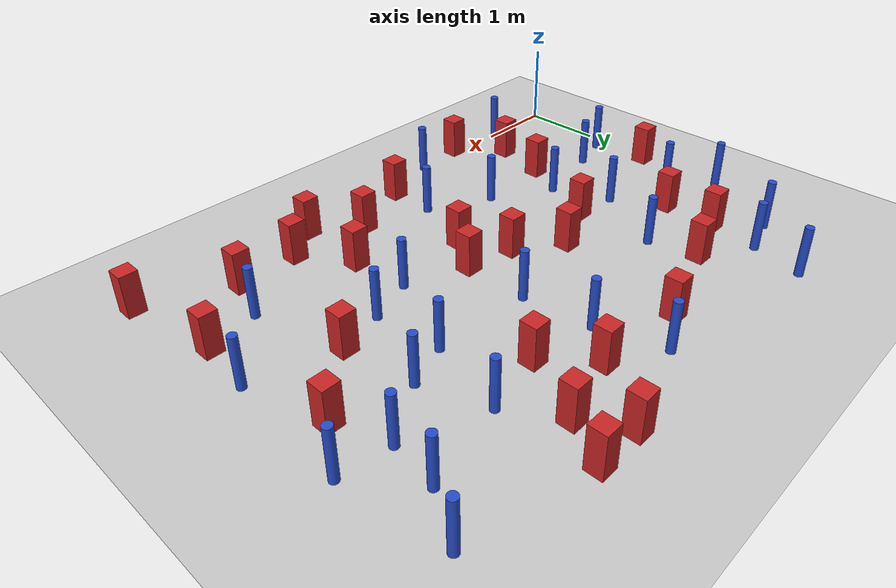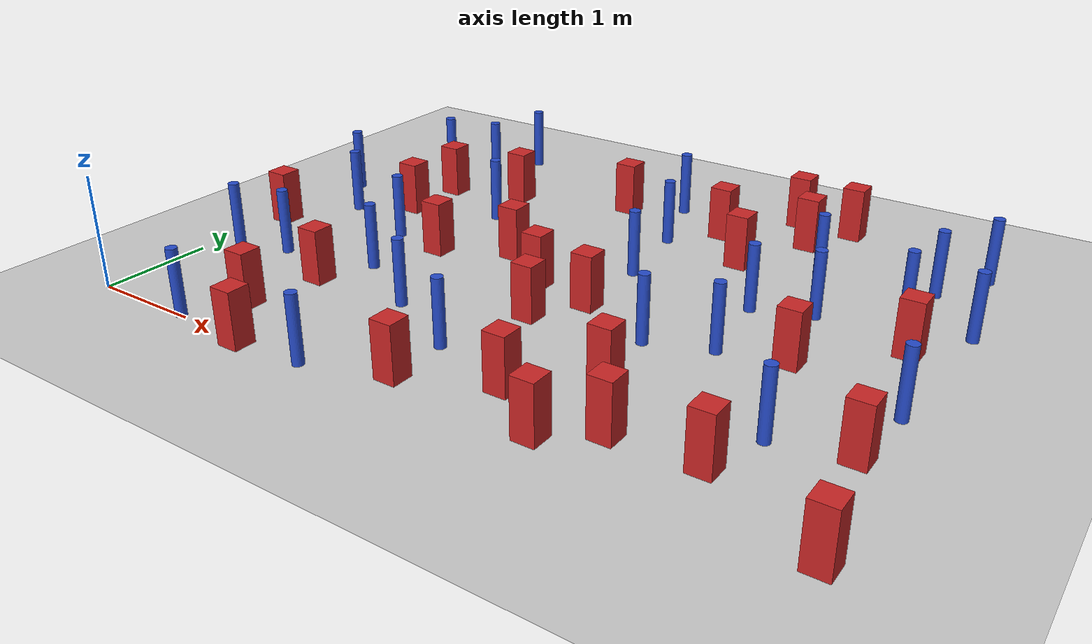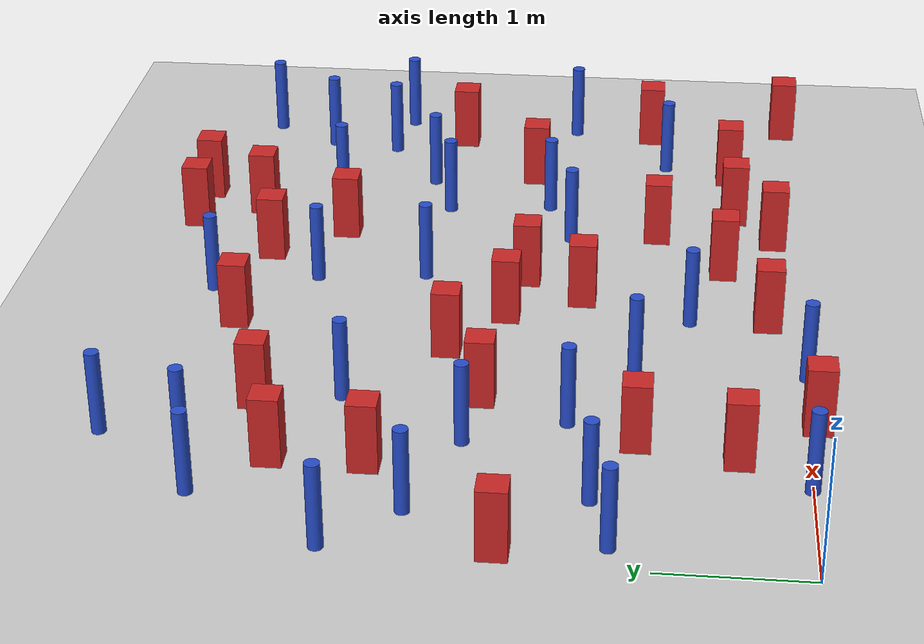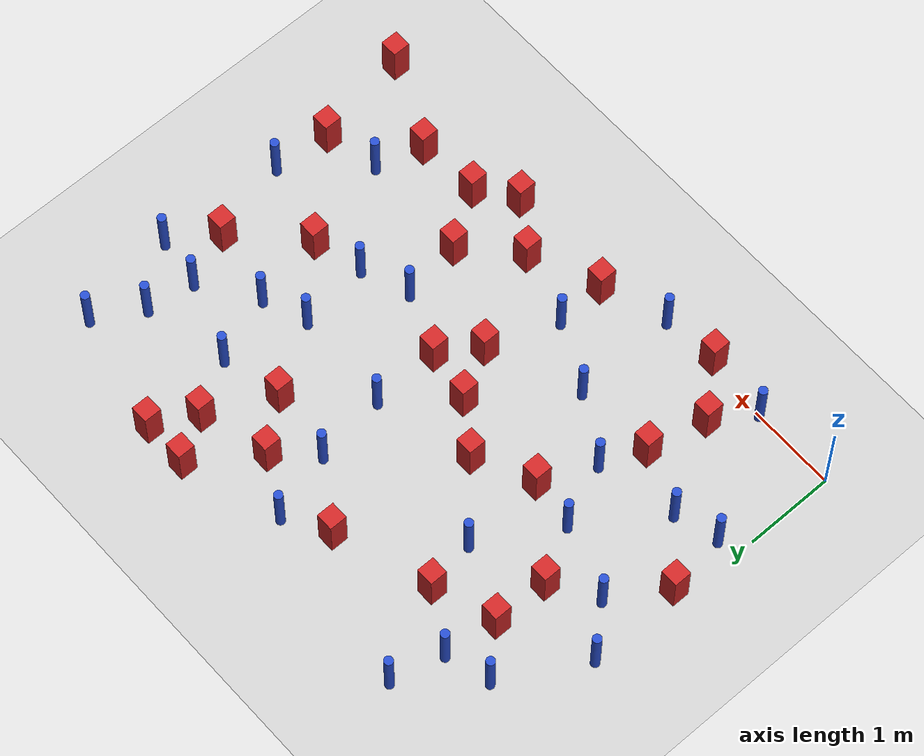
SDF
<sdf version="1.6">
 <world name="default">
  <model name="ground_plane">
   <static>1</static>
   <link name="link">
    <collision name="collision">
     <geometry><plane><normal>0 0 1</normal><size>100 100</size></plane></geometry>
     <surface><friction><ode><mu>100</mu><mu2>50</mu2></ode></friction></surface>
    </collision>
    <visual name="visual">
     <cast_shadows>0</cast_shadows>
     <geometry><plane><normal>0 0 1</normal><size>100 100</size></plane></geometry>
     <material>
      <ambient>1.0 1.0 1.0 1.0</ambient>
      <diffuse>0.8 0.8 0.8 1.0</diffuse>
      <specular>0.01 0.01 0.01 1.000000</specular>
     </material>
    </visual>
   </link>
  </model>
  <model name="square_post_obstacle1">
   <static>true</static>
   <pose>3.79219222096 0.554203007077 -6.11067671241e-07 -5.50515727128e-06 -8.79689657224e-07 2.37013304536e-05</pose>
   <link name="link">
    <pose>0 0 0.25 0 -0 0</pose>
    <inertial>
     <mass>100</mass>
     <inertia>
      <ixx>0.166667</ixx>
      <ixy>0</ixy>
      <ixz>0</ixz>
      <iyy>0.166667</iyy>
      <iyz>0</iyz>
      <izz>0.166667</izz>
     </inertia>
    </inertial>
    <collision name="collision"><geometry><box><size>.2 .2 .5</size></box></geometry></collision>
    <visual name="visual">
     <geometry><box><size>.2 .2 .5</size></box></geometry>
     <material>
      <script><name>Gazebo/Red</name><uri>file://media/materials/scripts/gazebo.material</uri></script>
     </material>
    </visual>
   </link>
  </model>
  <model name="pole_obstacle4">
   <static>true</static>
   <pose>4.79706785582 1.914005729 -9.47619616065e-06 5.49618799738e-07 2.36310414071e-07 -1.55090534796e-07</pose>
   <link name="link">
    <pose>0 0 0.3 0 -0 0</pose>
    <inertial>
     <mass>1</mass>
     <inertia><ixx>0.145833</ixx><ixy>0</ixy><ixz>0</ixz><iyy>0.145833</iyy><iyz>0</iyz><izz>0.125</izz></inertia>
    </inertial>
    <collision name="collision">
     <geometry><cylinder><radius>0.05</radius><length>.6</length></cylinder></geometry>
    </collision>
    <visual name="visual">
     <geometry><cylinder><radius>0.05</radius><length>.6</length></cylinder></geometry>
     <material>
      <script><name>Gazebo/Blue</name><uri>file://media/materials/scripts/gazebo.material</uri></script>
     </material>
    </visual>
   </link>
  </model>
  <model name="square_post_obstacle4">
   <static>true</static>
   <pose>4.3136634986 0.171121592858 -6.11067671241e-07 -5.50515727128e-06 -8.79689657224e-07 2.37013304536e-05</pose>
   <link name="link">
    <pose>0 0 0.25 0 -0 0</pose>
    <inertial>
     <mass>100</mass>
     <inertia>
      <ixx>0.166667</ixx>
      <ixy>0</ixy>
      <ixz>0</ixz>
      <iyy>0.166667</iyy>
      <iyz>0</iyz>
      <izz>0.166667</izz>
     </inertia>
    </inertial>
    <collision name="collision"><geometry><box><size>.2 .2 .5</size></box></geometry></collision>
    <visual name="visual">
     <geometry><box><size>.2 .2 .5</size></box></geometry>
     <material>
      <script><name>Gazebo/Red</name><uri>file://media/materials/scripts/gazebo.material</uri></script>
     </material>
    </visual>
   </link>
  </model>
  <model name="pole_obstacle11">
   <static>true</static>
   <pose>5.88051444099 3.81446614888 -9.47619616065e-06 5.49618799738e-07 2.36310414051e-07 -1.55090534805e-07</pose>
   <link name="link">
    <pose>0 0 0.3 0 -0 0</pose>
    <inertial>
     <mass>1</mass>
     <inertia><ixx>0.145833</ixx><ixy>0</ixy><ixz>0</ixz><iyy>0.145833</iyy><iyz>0</iyz><izz>0.125</izz></inertia>
    </inertial>
    <collision name="collision">
     <geometry><cylinder><radius>0.05</radius><length>.6</length></cylinder></geometry>
    </collision>
    <visual name="visual">
     <geometry><cylinder><radius>0.05</radius><length>.6</length></cylinder></geometry>
     <material>
      <script><name>Gazebo/Blue</name><uri>file://media/materials/scripts/gazebo.material</uri></script>
     </material>
    </visual>
   </link>
  </model>
  <model name="square_post_obstacle16">
   <static>true</static>
   <pose>4.32348105466 4.64907047005 -6.11067671241e-07 -5.50515727128e-06 -8.79689657224e-07 2.37013304536e-05</pose>
   <link name="link">
    <pose>0 0 0.25 0 -0 0</pose>
    <inertial>
     <mass>100</mass>
     <inertia>
      <ixx>0.166667</ixx>
      <ixy>0</ixy>
      <ixz>0</ixz>
      <iyy>0.166667</iyy>
      <iyz>0</iyz>
      <izz>0.166667</izz>
     </inertia>
    </inertial>
    <collision name="collision"><geometry><box><size>.2 .2 .5</size></box></geometry></collision>
    <visual name="visual">
     <geometry><box><size>.2 .2 .5</size></box></geometry>
     <material>
      <script><name>Gazebo/Red</name><uri>file://media/materials/scripts/gazebo.material</uri></script>
     </material>
    </visual>
   </link>
  </model>
  <model name="square_post_obstacle17">
   <static>true</static>
   <pose>0.998053957263 3.47318975611 -6.11067671241e-07 -5.50515727128e-06 -8.79689657224e-07 2.37013304536e-05</pose>
   <link name="link">
    <pose>0 0 0.25 0 -0 0</pose>
    <inertial>
     <mass>100</mass>
     <inertia>
      <ixx>0.166667</ixx>
      <ixy>0</ixy>
      <ixz>0</ixz>
      <iyy>0.166667</iyy>
      <iyz>0</iyz>
      <izz>0.166667</izz>
     </inertia>
    </inertial>
    <collision name="collision"><geometry><box><size>.2 .2 .5</size></box></geometry></collision>
    <visual name="visual">
     <geometry><box><size>.2 .2 .5</size></box></geometry>
     <material>
      <script><name>Gazebo/Red</name><uri>file://media/materials/scripts/gazebo.material</uri></script>
     </material>
    </visual>
   </link>
  </model>
  <model name="pole_obstacle22">
   <static>true</static>
   <pose>2.28810434807 1.1677232516 -9.47619616065e-06 5.49618799737e-07 2.36310414072e-07 -1.55090534793e-07</pose>
   <link name="link">
    <pose>0 0 0.3 0 -0 0</pose>
    <inertial>
     <mass>1</mass>
     <inertia><ixx>0.145833</ixx><ixy>0</ixy><ixz>0</ixz><iyy>0.145833</iyy><iyz>0</iyz><izz>0.125</izz></inertia>
    </inertial>
    <collision name="collision">
     <geometry><cylinder><radius>0.05</radius><length>.6</length></cylinder></geometry>
    </collision>
    <visual name="visual">
     <geometry><cylinder><radius>0.05</radius><length>.6</length></cylinder></geometry>
     <material>
      <script><name>Gazebo/Blue</name><uri>file://media/materials/scripts/gazebo.material</uri></script>
     </material>
    </visual>
   </link>
  </model>
  <model name="square_post_obstacle18">
   <static>true</static>
   <pose>1.68184939918 3.69530284069 -6.11067671241e-07 -5.50515727128e-06 -8.79689657224e-07 2.37013304536e-05</pose>
   <link name="link">
    <pose>0 0 0.25 0 -0 0</pose>
    <inertial>
     <mass>100</mass>
     <inertia>
      <ixx>0.166667</ixx>
      <ixy>0</ixy>
      <ixz>0</ixz>
      <iyy>0.166667</iyy>
      <iyz>0</iyz>
      <izz>0.166667</izz>
     </inertia>
    </inertial>
    <collision name="collision"><geometry><box><size>.2 .2 .5</size></box></geometry></collision>
    <visual name="visual">
     <geometry><box><size>.2 .2 .5</size></box></geometry>
     <material>
      <script><name>Gazebo/Red</name><uri>file://media/materials/scripts/gazebo.material</uri></script>
     </material>
    </visual>
   </link>
  </model>
  <model name="pole_obstacle28">
   <static>true</static>
   <pose>1.30821342656 2.26014021277 -9.47619616065e-06 5.49618799737e-07 2.36310414062e-07 -1.55090534798e-07</pose>
   <link name="link">
    <pose>0 0 0.3 0 -0 0</pose>
    <inertial>
     <mass>1</mass>
     <inertia><ixx>0.145833</ixx><ixy>0</ixy><ixz>0</ixz><iyy>0.145833</iyy><iyz>0</iyz><izz>0.125</izz></inertia>
    </inertial>
    <collision name="collision">
     <geometry><cylinder><radius>0.05</radius><length>.6</length></cylinder></geometry>
    </collision>
    <visual name="visual">
     <geometry><cylinder><radius>0.05</radius><length>.6</length></cylinder></geometry>
     <material>
      <script><name>Gazebo/Blue</name><uri>file://media/materials/scripts/gazebo.material</uri></script>
     </material>
    </visual>
   </link>
  </model>
  <model name="square_post_obstacle33">
   <static>true</static>
   <pose>0.984866948307 2.84915845615 -6.11067671241e-07 -5.50515727128e-06 -8.79689657224e-07 2.37013304536e-05</pose>
   <link name="link">
    <pose>0 0 0.25 0 -0 0</pose>
    <inertial>
     <mass>100</mass>
     <inertia>
      <ixx>0.166667</ixx>
      <ixy>0</ixy>
      <ixz>0</ixz>
      <iyy>0.166667</iyy>
      <iyz>0</iyz>
      <izz>0.166667</izz>
     </inertia>
    </inertial>
    <collision name="collision"><geometry><box><size>.2 .2 .5</size></box></geometry></collision>
    <visual name="visual">
     <geometry><box><size>.2 .2 .5</size></box></geometry>
     <material>
      <script><name>Gazebo/Red</name><uri>file://media/materials/scripts/gazebo.material</uri></script>
     </material>
    </visual>
   </link>
  </model>
  <model name="pole_obstacle43">
   <static>true</static>
   <pose>0.216055112586 1.26381261979 -9.47619616065e-06 5.49618799737e-07 2.36310414054e-07 -1.55090534804e-07</pose>
   <link name="link">
    <pose>0 0 0.3 0 -0 0</pose>
    <inertial>
     <mass>1</mass>
     <inertia><ixx>0.145833</ixx><ixy>0</ixy><ixz>0</ixz><iyy>0.145833</iyy><iyz>0</iyz><izz>0.125</izz></inertia>
    </inertial>
    <collision name="collision">
     <geometry><cylinder><radius>0.05</radius><length>.6</length></cylinder></geometry>
    </collision>
    <visual name="visual">
     <geometry><cylinder><radius>0.05</radius><length>.6</length></cylinder></geometry>
     <material>
      <script><name>Gazebo/Blue</name><uri>file://media/materials/scripts/gazebo.material</uri></script>
     </material>
    </visual>
   </link>
  </model>
  <model name="square_post_obstacle41">
   <static>true</static>
   <pose>3.57045151102 2.00614338119 -6.11067671241e-07 -5.50515727128e-06 -8.79689657224e-07 2.37013304536e-05</pose>
   <link name="link">
    <pose>0 0 0.25 0 -0 0</pose>
    <inertial>
     <mass>100</mass>
     <inertia>
      <ixx>0.166667</ixx>
      <ixy>0</ixy>
      <ixz>0</ixz>
      <iyy>0.166667</iyy>
      <iyz>0</iyz>
      <izz>0.166667</izz>
     </inertia>
    </inertial>
    <collision name="collision"><geometry><box><size>.2 .2 .5</size></box></geometry></collision>
    <visual name="visual">
     <geometry><box><size>.2 .2 .5</size></box></geometry>
     <material>
      <script><name>Gazebo/Red</name><uri>file://media/materials/scripts/gazebo.material</uri></script>
     </material>
    </visual>
   </link>
  </model>
  <model name="square_post_obstacle43">
   <static>true</static>
   <pose>3.82876449311 3.96652073575 -6.11067671241e-07 -5.50515727128e-06 -8.79689657224e-07 2.37013304536e-05</pose>
   <link name="link">
    <pose>0 0 0.25 0 -0 0</pose>
    <inertial>
     <mass>100</mass>
     <inertia>
      <ixx>0.166667</ixx>
      <ixy>0</ixy>
      <ixz>0</ixz>
      <iyy>0.166667</iyy>
      <iyz>0</iyz>
      <izz>0.166667</izz>
     </inertia>
    </inertial>
    <collision name="collision"><geometry><box><size>.2 .2 .5</size></box></geometry></collision>
    <visual name="visual">
     <geometry><box><size>.2 .2 .5</size></box></geometry>
     <material>
      <script><name>Gazebo/Red</name><uri>file://media/materials/scripts/gazebo.material</uri></script>
     </material>
    </visual>
   </link>
  </model>
  <model name="pole_obstacle56">
   <static>true</static>
   <pose>1.58944044289 1.58795678903 -9.47619616065e-06 5.49618799737e-07 2.36310414065e-07 -1.55090534798e-07</pose>
   <link name="link">
    <pose>0 0 0.3 0 -0 0</pose>
    <inertial>
     <mass>1</mass>
     <inertia><ixx>0.145833</ixx><ixy>0</ixy><ixz>0</ixz><iyy>0.145833</iyy><iyz>0</iyz><izz>0.125</izz></inertia>
    </inertial>
    <collision name="collision">
     <geometry><cylinder><radius>0.05</radius><length>.6</length></cylinder></geometry>
    </collision>
    <visual name="visual">
     <geometry><cylinder><radius>0.05</radius><length>.6</length></cylinder></geometry>
     <material>
      <script><name>Gazebo/Blue</name><uri>file://media/materials/scripts/gazebo.material</uri></script>
     </material>
    </visual>
   </link>
  </model>
  <model name="pole_obstacle65">
   <static>true</static>
   <pose>4.26177026128 1.72013369451 -9.47619616065e-06 5.49618799738e-07 2.36310414071e-07 -1.55090534796e-07</pose>
   <link name="link">
    <pose>0 0 0.3 0 -0 0</pose>
    <inertial>
     <mass>1</mass>
     <inertia><ixx>0.145833</ixx><ixy>0</ixy><ixz>0</ixz><iyy>0.145833</iyy><iyz>0</iyz><izz>0.125</izz></inertia>
    </inertial>
    <collision name="collision">
     <geometry><cylinder><radius>0.05</radius><length>.6</length></cylinder></geometry>
    </collision>
    <visual name="visual">
     <geometry><cylinder><radius>0.05</radius><length>.6</length></cylinder></geometry>
     <material>
      <script><name>Gazebo/Blue</name><uri>file://media/materials/scripts/gazebo.material</uri></script>
     </material>
    </visual>
   </link>
  </model>
  <model name="pole_obstacle71">
   <static>true</static>
   <pose>0.703647938996 1.39776191225 -9.47619616065e-06 5.49618799738e-07 2.36310414061e-07 -1.55090534801e-07</pose>
   <link name="link">
    <pose>0 0 0.3 0 -0 0</pose>
    <inertial>
     <mass>1</mass>
     <inertia><ixx>0.145833</ixx><ixy>0</ixy><ixz>0</ixz><iyy>0.145833</iyy><iyz>0</iyz><izz>0.125</izz></inertia>
    </inertial>
    <collision name="collision">
     <geometry><cylinder><radius>0.05</radius><length>.6</length></cylinder></geometry>
    </collision>
    <visual name="visual">
     <geometry><cylinder><radius>0.05</radius><length>.6</length></cylinder></geometry>
     <material>
      <script><name>Gazebo/Blue</name><uri>file://media/materials/scripts/gazebo.material</uri></script>
     </material>
    </visual>
   </link>
  </model>
  <model name="pole_obstacle74">
   <static>true</static>
   <pose>1.07920066664 4.06081301825 -9.47619616065e-06 5.49618799737e-07 2.36310414061e-07 -1.550905348e-07</pose>
   <link name="link">
    <pose>0 0 0.3 0 -0 0</pose>
    <inertial>
     <mass>1</mass>
     <inertia><ixx>0.145833</ixx><ixy>0</ixy><ixz>0</ixz><iyy>0.145833</iyy><iyz>0</iyz><izz>0.125</izz></inertia>
    </inertial>
    <collision name="collision">
     <geometry><cylinder><radius>0.05</radius><length>.6</length></cylinder></geometry>
    </collision>
    <visual name="visual">
     <geometry><cylinder><radius>0.05</radius><length>.6</length></cylinder></geometry>
     <material>
      <script><name>Gazebo/Blue</name><uri>file://media/materials/scripts/gazebo.material</uri></script>
     </material>
    </visual>
   </link>
  </model>
  <model name="square_post_obstacle74">
   <static>true</static>
   <pose>1.68644656364 -0.0543923644889 -6.11067671241e-07 -5.50515727128e-06 -8.79689657224e-07 2.37013304536e-05</pose>
   <link name="link">
    <pose>0 0 0.25 0 -0 0</pose>
    <inertial>
     <mass>100</mass>
     <inertia>
      <ixx>0.166667</ixx>
      <ixy>0</ixy>
      <ixz>0</ixz>
      <iyy>0.166667</iyy>
      <iyz>0</iyz>
      <izz>0.166667</izz>
     </inertia>
    </inertial>
    <collision name="collision"><geometry><box><size>.2 .2 .5</size></box></geometry></collision>
    <visual name="visual">
     <geometry><box><size>.2 .2 .5</size></box></geometry>
     <material>
      <script><name>Gazebo/Red</name><uri>file://media/materials/scripts/gazebo.material</uri></script>
     </material>
    </visual>
   </link>
  </model>
  <model name="pole_obstacle87">
   <static>true</static>
   <pose>3.01632452356 0.793861336705 -9.47619616065e-06 5.49618799738e-07 2.36310414075e-07 -1.55090534793e-07</pose>
   <link name="link">
    <pose>0 0 0.3 0 -0 0</pose>
    <inertial>
     <mass>1</mass>
     <inertia><ixx>0.145833</ixx><ixy>0</ixy><ixz>0</ixz><iyy>0.145833</iyy><iyz>0</iyz><izz>0.125</izz></inertia>
    </inertial>
    <collision name="collision">
     <geometry><cylinder><radius>0.05</radius><length>.6</length></cylinder></geometry>
    </collision>
    <visual name="visual">
     <geometry><cylinder><radius>0.05</radius><length>.6</length></cylinder></geometry>
     <material>
      <script><name>Gazebo/Blue</name><uri>file://media/materials/scripts/gazebo.material</uri></script>
     </material>
    </visual>
   </link>
  </model>
  <model name="square_post_obstacle80">
   <static>true</static>
   <pose>0.116263595796 1.94881668648 -6.11067671241e-07 -5.50515727128e-06 -8.79689657224e-07 2.37013304536e-05</pose>
   <link name="link">
    <pose>0 0 0.25 0 -0 0</pose>
    <inertial>
     <mass>100</mass>
     <inertia>
      <ixx>0.166667</ixx>
      <ixy>0</ixy>
      <ixz>0</ixz>
      <iyy>0.166667</iyy>
      <iyz>0</iyz>
      <izz>0.166667</izz>
     </inertia>
    </inertial>
    <collision name="collision"><geometry><box><size>.2 .2 .5</size></box></geometry></collision>
    <visual name="visual">
     <geometry><box><size>.2 .2 .5</size></box></geometry>
     <material>
      <script><name>Gazebo/Red</name><uri>file://media/materials/scripts/gazebo.material</uri></script>
     </material>
    </visual>
   </link>
  </model>
  <model name="square_post_obstacle83">
   <static>true</static>
   <pose>2.99994828909 2.11521698341 -6.11067671241e-07 -5.50515727128e-06 -8.79689657224e-07 2.37013304536e-05</pose>
   <link name="link">
    <pose>0 0 0.25 0 -0 0</pose>
    <inertial>
     <mass>100</mass>
     <inertia>
      <ixx>0.166667</ixx>
      <ixy>0</ixy>
      <ixz>0</ixz>
      <iyy>0.166667</iyy>
      <iyz>0</iyz>
      <izz>0.166667</izz>
     </inertia>
    </inertial>
    <collision name="collision"><geometry><box><size>.2 .2 .5</size></box></geometry></collision>
    <visual name="visual">
     <geometry><box><size>.2 .2 .5</size></box></geometry>
     <material>
      <script><name>Gazebo/Red</name><uri>file://media/materials/scripts/gazebo.material</uri></script>
     </material>
    </visual>
   </link>
  </model>
  <model name="square_post_obstacle84">
   <static>true</static>
   <pose>5.33080977806 2.06206287119 -6.11067671241e-07 -5.50515727128e-06 -8.79689657224e-07 2.37013304536e-05</pose>
   <link name="link">
    <pose>0 0 0.25 0 -0 0</pose>
    <inertial>
     <mass>100</mass>
     <inertia>
      <ixx>0.166667</ixx>
      <ixy>0</ixy>
      <ixz>0</ixz>
      <iyy>0.166667</iyy>
      <iyz>0</iyz>
      <izz>0.166667</izz>
     </inertia>
    </inertial>
    <collision name="collision"><geometry><box><size>.2 .2 .5</size></box></geometry></collision>
    <visual name="visual">
     <geometry><box><size>.2 .2 .5</size></box></geometry>
     <material>
      <script><name>Gazebo/Red</name><uri>file://media/materials/scripts/gazebo.material</uri></script>
     </material>
    </visual>
   </link>
  </model>
  <model name="pole_obstacle92">
   <static>true</static>
   <pose>5.61044557585 1.0077013824 -9.47619616065e-06 5.49618799737e-07 2.36310414071e-07 -1.55090534795e-07</pose>
   <link name="link">
    <pose>0 0 0.3 0 -0 0</pose>
    <inertial>
     <mass>1</mass>
     <inertia><ixx>0.145833</ixx><ixy>0</ixy><ixz>0</ixz><iyy>0.145833</iyy><iyz>0</iyz><izz>0.125</izz></inertia>
    </inertial>
    <collision name="collision">
     <geometry><cylinder><radius>0.05</radius><length>.6</length></cylinder></geometry>
    </collision>
    <visual name="visual">
     <geometry><cylinder><radius>0.05</radius><length>.6</length></cylinder></geometry>
     <material>
      <script><name>Gazebo/Blue</name><uri>file://media/materials/scripts/gazebo.material</uri></script>
     </material>
    </visual>
   </link>
  </model>
  <model name="square_post_obstacle95">
   <static>true</static>
   <pose>3.28506233248 1.57991079326 -6.11067671241e-07 -5.50515727128e-06 -8.79689657224e-07 2.37013304536e-05</pose>
   <link name="link">
    <pose>0 0 0.25 0 -0 0</pose>
    <inertial>
     <mass>100</mass>
     <inertia>
      <ixx>0.166667</ixx>
      <ixy>0</ixy>
      <ixz>0</ixz>
      <iyy>0.166667</iyy>
      <iyz>0</iyz>
      <izz>0.166667</izz>
     </inertia>
    </inertial>
    <collision name="collision"><geometry><box><size>.2 .2 .5</size></box></geometry></collision>
    <visual name="visual">
     <geometry><box><size>.2 .2 .5</size></box></geometry>
     <material>
      <script><name>Gazebo/Red</name><uri>file://media/materials/scripts/gazebo.material</uri></script>
     </material>
    </visual>
   </link>
  </model>
  <model name="square_post_obstacle96">
   <static>true</static>
   <pose>4.72031970234 0.464931102182 -6.11067671241e-07 -5.50515727128e-06 -8.79689657224e-07 2.37013304536e-05</pose>
   <link name="link">
    <pose>0 0 0.25 0 -0 0</pose>
    <inertial>
     <mass>100</mass>
     <inertia>
      <ixx>0.166667</ixx>
      <ixy>0</ixy>
      <ixz>0</ixz>
      <iyy>0.166667</iyy>
      <iyz>0</iyz>
      <izz>0.166667</izz>
     </inertia>
    </inertial>
    <collision name="collision"><geometry><box><size>.2 .2 .5</size></box></geometry></collision>
    <visual name="visual">
     <geometry><box><size>.2 .2 .5</size></box></geometry>
     <material>
      <script><name>Gazebo/Red</name><uri>file://media/materials/scripts/gazebo.material</uri></script>
     </material>
    </visual>
   </link>
  </model>
  <model name="pole_obstacle111">
   <static>true</static>
   <pose>6.18319131883 4.32823075727 -9.47619616065e-06 5.49618799737e-07 2.36310414037e-07 -1.55090534814e-07</pose>
   <link name="link">
    <pose>0 0 0.3 0 -0 0</pose>
    <inertial>
     <mass>1</mass>
     <inertia><ixx>0.145833</ixx><ixy>0</ixy><ixz>0</ixz><iyy>0.145833</iyy><iyz>0</iyz><izz>0.125</izz></inertia>
    </inertial>
    <collision name="collision">
     <geometry><cylinder><radius>0.05</radius><length>.6</length></cylinder></geometry>
    </collision>
    <visual name="visual">
     <geometry><cylinder><radius>0.05</radius><length>.6</length></cylinder></geometry>
     <material>
      <script><name>Gazebo/Blue</name><uri>file://media/materials/scripts/gazebo.material</uri></script>
     </material>
    </visual>
   </link>
  </model>
  <model name="square_post_obstacle110">
   <static>true</static>
   <pose>6.39923466736 0.0416942447685 -6.11067671241e-07 -5.50515727128e-06 -8.79689657224e-07 2.37013304536e-05</pose>
   <link name="link">
    <pose>0 0 0.25 0 -0 0</pose>
    <inertial>
     <mass>100</mass>
     <inertia>
      <ixx>0.166667</ixx>
      <ixy>0</ixy>
      <ixz>0</ixz>
      <iyy>0.166667</iyy>
      <iyz>0</iyz>
      <izz>0.166667</izz>
     </inertia>
    </inertial>
    <collision name="collision"><geometry><box><size>.2 .2 .5</size></box></geometry></collision>
    <visual name="visual">
     <geometry><box><size>.2 .2 .5</size></box></geometry>
     <material>
      <script><name>Gazebo/Red</name><uri>file://media/materials/scripts/gazebo.material</uri></script>
     </material>
    </visual>
   </link>
  </model>
  <model name="square_post_obstacle112">
   <static>true</static>
   <pose>1.83884051942 2.18930431593 -6.11067671241e-07 -5.50515727128e-06 -8.79689657224e-07 2.37013304536e-05</pose>
   <link name="link">
    <pose>0 0 0.25 0 -0 0</pose>
    <inertial>
     <mass>100</mass>
     <inertia>
      <ixx>0.166667</ixx>
      <ixy>0</ixy>
      <ixz>0</ixz>
      <iyy>0.166667</iyy>
      <iyz>0</iyz>
      <izz>0.166667</izz>
     </inertia>
    </inertial>
    <collision name="collision"><geometry><box><size>.2 .2 .5</size></box></geometry></collision>
    <visual name="visual">
     <geometry><box><size>.2 .2 .5</size></box></geometry>
     <material>
      <script><name>Gazebo/Red</name><uri>file://media/materials/scripts/gazebo.material</uri></script>
     </material>
    </visual>
   </link>
  </model>
  <model name="pole_obstacle121">
   <static>true</static>
   <pose>4.93414253019 3.60222079316 -9.47619616065e-06 5.49618799738e-07 2.36310414051e-07 -1.55090534805e-07</pose>
   <link name="link">
    <pose>0 0 0.3 0 -0 0</pose>
    <inertial>
     <mass>1</mass>
     <inertia><ixx>0.145833</ixx><ixy>0</ixy><ixz>0</ixz><iyy>0.145833</iyy><iyz>0</iyz><izz>0.125</izz></inertia>
    </inertial>
    <collision name="collision">
     <geometry><cylinder><radius>0.05</radius><length>.6</length></cylinder></geometry>
    </collision>
    <visual name="visual">
     <geometry><cylinder><radius>0.05</radius><length>.6</length></cylinder></geometry>
     <material>
      <script><name>Gazebo/Blue</name><uri>file://media/materials/scripts/gazebo.material</uri></script>
     </material>
    </visual>
   </link>
  </model>
  <model name="square_post_obstacle132">
   <static>true</static>
   <pose>2.76003079809 4.03835283163 -6.11067671241e-07 -5.50515727128e-06 -8.79689657224e-07 2.37013304536e-05</pose>
   <link name="link">
    <pose>0 0 0.25 0 -0 0</pose>
    <inertial>
     <mass>100</mass>
     <inertia>
      <ixx>0.166667</ixx>
      <ixy>0</ixy>
      <ixz>0</ixz>
      <iyy>0.166667</iyy>
      <iyz>0</iyz>
      <izz>0.166667</izz>
     </inertia>
    </inertial>
    <collision name="collision"><geometry><box><size>.2 .2 .5</size></box></geometry></collision>
    <visual name="visual">
     <geometry><box><size>.2 .2 .5</size></box></geometry>
     <material>
      <script><name>Gazebo/Red</name><uri>file://media/materials/scripts/gazebo.material</uri></script>
     </material>
    </visual>
   </link>
  </model>
  <model name="pole_obstacle138">
   <static>true</static>
   <pose>5.80370434113 3.27703155267 -9.47619616065e-06 5.49618799738e-07 2.36310414051e-07 -1.55090534805e-07</pose>
   <link name="link">
    <pose>0 0 0.3 0 -0 0</pose>
    <inertial>
     <mass>1</mass>
     <inertia><ixx>0.145833</ixx><ixy>0</ixy><ixz>0</ixz><iyy>0.145833</iyy><iyz>0</iyz><izz>0.125</izz></inertia>
    </inertial>
    <collision name="collision">
     <geometry><cylinder><radius>0.05</radius><length>.6</length></cylinder></geometry>
    </collision>
    <visual name="visual">
     <geometry><cylinder><radius>0.05</radius><length>.6</length></cylinder></geometry>
     <material>
      <script><name>Gazebo/Blue</name><uri>file://media/materials/scripts/gazebo.material</uri></script>
     </material>
    </visual>
   </link>
  </model>
  <model name="square_post_obstacle136">
   <static>true</static>
   <pose>4.34325883678 1.05761910405 -6.11067671241e-07 -5.50515727128e-06 -8.79689657224e-07 2.37013304536e-05</pose>
   <link name="link">
    <pose>0 0 0.25 0 -0 0</pose>
    <inertial>
     <mass>100</mass>
     <inertia>
      <ixx>0.166667</ixx>
      <ixy>0</ixy>
      <ixz>0</ixz>
      <iyy>0.166667</iyy>
      <iyz>0</iyz>
      <izz>0.166667</izz>
     </inertia>
    </inertial>
    <collision name="collision"><geometry><box><size>.2 .2 .5</size></box></geometry></collision>
    <visual name="visual">
     <geometry><box><size>.2 .2 .5</size></box></geometry>
     <material>
      <script><name>Gazebo/Red</name><uri>file://media/materials/scripts/gazebo.material</uri></script>
     </material>
    </visual>
   </link>
  </model>
  <model name="pole_obstacle141">
   <static>true</static>
   <pose>5.19705463333 2.87762112749 -9.47619616065e-06 5.49618799738e-07 2.36310414051e-07 -1.55090534805e-07</pose>
   <link name="link">
    <pose>0 0 0.3 0 -0 0</pose>
    <inertial>
     <mass>1</mass>
     <inertia><ixx>0.145833</ixx><ixy>0</ixy><ixz>0</ixz><iyy>0.145833</iyy><iyz>0</iyz><izz>0.125</izz></inertia>
    </inertial>
    <collision name="collision">
     <geometry><cylinder><radius>0.05</radius><length>.6</length></cylinder></geometry>
    </collision>
    <visual name="visual">
     <geometry><cylinder><radius>0.05</radius><length>.6</length></cylinder></geometry>
     <material>
      <script><name>Gazebo/Blue</name><uri>file://media/materials/scripts/gazebo.material</uri></script>
     </material>
    </visual>
   </link>
  </model>
  <model name="pole_obstacle142">
   <static>true</static>
   <pose>4.70690044753 2.70098586891 -9.47619616065e-06 5.49618799738e-07 2.36310414051e-07 -1.55090534805e-07</pose>
   <link name="link">
    <pose>0 0 0.3 0 -0 0</pose>
    <inertial>
     <mass>1</mass>
     <inertia><ixx>0.145833</ixx><ixy>0</ixy><ixz>0</ixz><iyy>0.145833</iyy><iyz>0</iyz><izz>0.125</izz></inertia>
    </inertial>
    <collision name="collision">
     <geometry><cylinder><radius>0.05</radius><length>.6</length></cylinder></geometry>
    </collision>
    <visual name="visual">
     <geometry><cylinder><radius>0.05</radius><length>.6</length></cylinder></geometry>
     <material>
      <script><name>Gazebo/Blue</name><uri>file://media/materials/scripts/gazebo.material</uri></script>
     </material>
    </visual>
   </link>
  </model>
  <model name="pole_obstacle145">
   <static>true</static>
   <pose>6.36103174136 3.19468120557 -9.47619616065e-06 5.49618799738e-07 2.36310414051e-07 -1.55090534805e-07</pose>
   <link name="link">
    <pose>0 0 0.3 0 -0 0</pose>
    <inertial>
     <mass>1</mass>
     <inertia><ixx>0.145833</ixx><ixy>0</ixy><ixz>0</ixz><iyy>0.145833</iyy><iyz>0</iyz><izz>0.125</izz></inertia>
    </inertial>
    <collision name="collision">
     <geometry><cylinder><radius>0.05</radius><length>.6</length></cylinder></geometry>
    </collision>
    <visual name="visual">
     <geometry><cylinder><radius>0.05</radius><length>.6</length></cylinder></geometry>
     <material>
      <script><name>Gazebo/Blue</name><uri>file://media/materials/scripts/gazebo.material</uri></script>
     </material>
    </visual>
   </link>
  </model>
  <model name="square_post_obstacle142">
   <static>true</static>
   <pose>1.37636616325 1.13193920639 -6.11067671241e-07 -5.50515727128e-06 -8.79689657224e-07 2.37013304536e-05</pose>
   <link name="link">
    <pose>0 0 0.25 0 -0 0</pose>
    <inertial>
     <mass>100</mass>
     <inertia>
      <ixx>0.166667</ixx>
      <ixy>0</ixy>
      <ixz>0</ixz>
      <iyy>0.166667</iyy>
      <iyz>0</iyz>
      <izz>0.166667</izz>
     </inertia>
    </inertial>
    <collision name="collision"><geometry><box><size>.2 .2 .5</size></box></geometry></collision>
    <visual name="visual">
     <geometry><box><size>.2 .2 .5</size></box></geometry>
     <material>
      <script><name>Gazebo/Red</name><uri>file://media/materials/scripts/gazebo.material</uri></script>
     </material>
    </visual>
   </link>
  </model>
  <model name="square_post_obstacle145">
   <static>true</static>
   <pose>2.47724302857 2.48757557991 -6.11067671241e-07 -5.50515727128e-06 -8.79689657224e-07 2.37013304536e-05</pose>
   <link name="link">
    <pose>0 0 0.25 0 -0 0</pose>
    <inertial>
     <mass>100</mass>
     <inertia>
      <ixx>0.166667</ixx>
      <ixy>0</ixy>
      <ixz>0</ixz>
      <iyy>0.166667</iyy>
      <iyz>0</iyz>
      <izz>0.166667</izz>
     </inertia>
    </inertial>
    <collision name="collision"><geometry><box><size>.2 .2 .5</size></box></geometry></collision>
    <visual name="visual">
     <geometry><box><size>.2 .2 .5</size></box></geometry>
     <material>
      <script><name>Gazebo/Red</name><uri>file://media/materials/scripts/gazebo.material</uri></script>
     </material>
    </visual>
   </link>
  </model>
  <model name="pole_obstacle157">
   <static>true</static>
   <pose>3.4647939287 3.56054024077 -9.47619616065e-06 5.49618799737e-07 2.36310414051e-07 -1.55090534807e-07</pose>
   <link name="link">
    <pose>0 0 0.3 0 -0 0</pose>
    <inertial>
     <mass>1</mass>
     <inertia><ixx>0.145833</ixx><ixy>0</ixy><ixz>0</ixz><iyy>0.145833</iyy><iyz>0</iyz><izz>0.125</izz></inertia>
    </inertial>
    <collision name="collision">
     <geometry><cylinder><radius>0.05</radius><length>.6</length></cylinder></geometry>
    </collision>
    <visual name="visual">
     <geometry><cylinder><radius>0.05</radius><length>.6</length></cylinder></geometry>
     <material>
      <script><name>Gazebo/Blue</name><uri>file://media/materials/scripts/gazebo.material</uri></script>
     </material>
    </visual>
   </link>
  </model>
  <model name="square_post_obstacle161">
   <static>true</static>
   <pose>6.02098922749 2.70144807098 -6.11067671241e-07 -5.50515727128e-06 -8.79689657224e-07 2.37013304536e-05</pose>
   <link name="link">
    <pose>0 0 0.25 0 -0 0</pose>
    <inertial>
     <mass>100</mass>
     <inertia>
      <ixx>0.166667</ixx>
      <ixy>0</ixy>
      <ixz>0</ixz>
      <iyy>0.166667</iyy>
      <iyz>0</iyz>
      <izz>0.166667</izz>
     </inertia>
    </inertial>
    <collision name="collision"><geometry><box><size>.2 .2 .5</size></box></geometry></collision>
    <visual name="visual">
     <geometry><box><size>.2 .2 .5</size></box></geometry>
     <material>
      <script><name>Gazebo/Red</name><uri>file://media/materials/scripts/gazebo.material</uri></script>
     </material>
    </visual>
   </link>
  </model>
  <model name="pole_obstacle179">
   <static>true</static>
   <pose>0.944238163048 0.0106927344317 -9.47619616065e-06 5.49618799738e-07 2.36310414062e-07 -1.55090534799e-07</pose>
   <link name="link">
    <pose>0 0 0.3 0 -0 0</pose>
    <inertial>
     <mass>1</mass>
     <inertia><ixx>0.145833</ixx><ixy>0</ixy><ixz>0</ixz><iyy>0.145833</iyy><iyz>0</iyz><izz>0.125</izz></inertia>
    </inertial>
    <collision name="collision">
     <geometry><cylinder><radius>0.05</radius><length>.6</length></cylinder></geometry>
    </collision>
    <visual name="visual">
     <geometry><cylinder><radius>0.05</radius><length>.6</length></cylinder></geometry>
     <material>
      <script><name>Gazebo/Blue</name><uri>file://media/materials/scripts/gazebo.material</uri></script>
     </material>
    </visual>
   </link>
  </model>
  <model name="square_post_obstacle180">
   <static>true</static>
   <pose>3.02779318731 0.240656789835 -6.11067671241e-07 -5.50515727128e-06 -8.79689657224e-07 2.37013304536e-05</pose>
   <link name="link">
    <pose>0 0 0.25 0 -0 0</pose>
    <inertial>
     <mass>100</mass>
     <inertia>
      <ixx>0.166667</ixx>
      <ixy>0</ixy>
      <ixz>0</ixz>
      <iyy>0.166667</iyy>
      <iyz>0</iyz>
      <izz>0.166667</izz>
     </inertia>
    </inertial>
    <collision name="collision"><geometry><box><size>.2 .2 .5</size></box></geometry></collision>
    <visual name="visual">
     <geometry><box><size>.2 .2 .5</size></box></geometry>
     <material>
      <script><name>Gazebo/Red</name><uri>file://media/materials/scripts/gazebo.material</uri></script>
     </material>
    </visual>
   </link>
  </model>
  <model name="square_post_obstacle181">
   <static>true</static>
   <pose>4.8462485792 4.64454164094 -6.11067671241e-07 -5.50515727128e-06 -8.79689657224e-07 2.37013304536e-05</pose>
   <link name="link">
    <pose>0 0 0.25 0 -0 0</pose>
    <inertial>
     <mass>100</mass>
     <inertia>
      <ixx>0.166667</ixx>
      <ixy>0</ixy>
      <ixz>0</ixz>
      <iyy>0.166667</iyy>
      <iyz>0</iyz>
      <izz>0.166667</izz>
     </inertia>
    </inertial>
    <collision name="collision"><geometry><box><size>.2 .2 .5</size></box></geometry></collision>
    <visual name="visual">
     <geometry><box><size>.2 .2 .5</size></box></geometry>
     <material>
      <script><name>Gazebo/Red</name><uri>file://media/materials/scripts/gazebo.material</uri></script>
     </material>
    </visual>
   </link>
  </model>
  <model name="pole_obstacle182">
   <static>true</static>
   <pose>0.0822807602554 3.01439185473 -9.47619616065e-06 5.49618799737e-07 2.36310414059e-07 -1.550905348e-07</pose>
   <link name="link">
    <pose>0 0 0.3 0 -0 0</pose>
    <inertial>
     <mass>1</mass>
     <inertia><ixx>0.145833</ixx><ixy>0</ixy><ixz>0</ixz><iyy>0.145833</iyy><iyz>0</iyz><izz>0.125</izz></inertia>
    </inertial>
    <collision name="collision">
     <geometry><cylinder><radius>0.05</radius><length>.6</length></cylinder></geometry>
    </collision>
    <visual name="visual">
     <geometry><cylinder><radius>0.05</radius><length>.6</length></cylinder></geometry>
     <material>
      <script><name>Gazebo/Blue</name><uri>file://media/materials/scripts/gazebo.material</uri></script>
     </material>
    </visual>
   </link>
  </model>
  <model name="square_post_obstacle182">
   <static>true</static>
   <pose>4.59554439035 4.17658864619 -6.11067671241e-07 -5.50515727128e-06 -8.79689657224e-07 2.37013304536e-05</pose>
   <link name="link">
    <pose>0 0 0.25 0 -0 0</pose>
    <inertial>
     <mass>100</mass>
     <inertia>
      <ixx>0.166667</ixx>
      <ixy>0</ixy>
      <ixz>0</ixz>
      <iyy>0.166667</iyy>
      <iyz>0</iyz>
      <izz>0.166667</izz>
     </inertia>
    </inertial>
    <collision name="collision"><geometry><box><size>.2 .2 .5</size></box></geometry></collision>
    <visual name="visual">
     <geometry><box><size>.2 .2 .5</size></box></geometry>
     <material>
      <script><name>Gazebo/Red</name><uri>file://media/materials/scripts/gazebo.material</uri></script>
     </material>
    </visual>
   </link>
  </model>
  <model name="pole_obstacle183">
   <static>true</static>
   <pose>3.56378338676 2.76257056776 -9.47619616065e-06 5.49618799737e-07 2.36310414051e-07 -1.55090534807e-07</pose>
   <link name="link">
    <pose>0 0 0.3 0 -0 0</pose>
    <inertial>
     <mass>1</mass>
     <inertia><ixx>0.145833</ixx><ixy>0</ixy><ixz>0</ixz><iyy>0.145833</iyy><iyz>0</iyz><izz>0.125</izz></inertia>
    </inertial>
    <collision name="collision">
     <geometry><cylinder><radius>0.05</radius><length>.6</length></cylinder></geometry>
    </collision>
    <visual name="visual">
     <geometry><cylinder><radius>0.05</radius><length>.6</length></cylinder></geometry>
     <material>
      <script><name>Gazebo/Blue</name><uri>file://media/materials/scripts/gazebo.material</uri></script>
     </material>
    </visual>
   </link>
  </model>
  <model name="pole_obstacle185">
   <static>true</static>
   <pose>1.79426930579 3.12163666858 -9.47619616065e-06 5.49618799737e-07 2.36310414062e-07 -1.55090534798e-07</pose>
   <link name="link">
    <pose>0 0 0.3 0 -0 0</pose>
    <inertial>
     <mass>1</mass>
     <inertia><ixx>0.145833</ixx><ixy>0</ixy><ixz>0</ixz><iyy>0.145833</iyy><iyz>0</iyz><izz>0.125</izz></inertia>
    </inertial>
    <collision name="collision">
     <geometry><cylinder><radius>0.05</radius><length>.6</length></cylinder></geometry>
    </collision>
    <visual name="visual">
     <geometry><cylinder><radius>0.05</radius><length>.6</length></cylinder></geometry>
     <material>
      <script><name>Gazebo/Blue</name><uri>file://media/materials/scripts/gazebo.material</uri></script>
     </material>
    </visual>
   </link>
  </model>
  <model name="square_post_obstacle187">
   <static>true</static>
   <pose>5.4353092235 0.499622147113 -6.11067671241e-07 -5.50515727128e-06 -8.79689657224e-07 2.37013304536e-05</pose>
   <link name="link">
    <pose>0 0 0.25 0 -0 0</pose>
    <inertial>
     <mass>100</mass>
     <inertia>
      <ixx>0.166667</ixx>
      <ixy>0</ixy>
      <ixz>0</ixz>
      <iyy>0.166667</iyy>
      <iyz>0</iyz>
      <izz>0.166667</izz>
     </inertia>
    </inertial>
    <collision name="collision"><geometry><box><size>.2 .2 .5</size></box></geometry></collision>
    <visual name="visual">
     <geometry><box><size>.2 .2 .5</size></box></geometry>
     <material>
      <script><name>Gazebo/Red</name><uri>file://media/materials/scripts/gazebo.material</uri></script>
     </material>
    </visual>
   </link>
  </model>
  <model name="square_post_obstacle198">
   <static>true</static>
   <pose>4.24289979712 3.45624932643 -6.11067671241e-07 -5.50515727128e-06 -8.79689657224e-07 2.37013304536e-05</pose>
   <link name="link">
    <pose>0 0 0.25 0 -0 0</pose>
    <inertial>
     <mass>100</mass>
     <inertia>
      <ixx>0.166667</ixx>
      <ixy>0</ixy>
      <ixz>0</ixz>
      <iyy>0.166667</iyy>
      <iyz>0</iyz>
      <izz>0.166667</izz>
     </inertia>
    </inertial>
    <collision name="collision"><geometry><box><size>.2 .2 .5</size></box></geometry></collision>
    <visual name="visual">
     <geometry><box><size>.2 .2 .5</size></box></geometry>
     <material>
      <script><name>Gazebo/Red</name><uri>file://media/materials/scripts/gazebo.material</uri></script>
     </material>
    </visual>
   </link>
  </model>
  <model name="square_post_obstacle200">
   <static>true</static>
   <pose>6.19858068098 1.14590748781 -6.11067671241e-07 -5.50515727128e-06 -8.79689657224e-07 2.37013304536e-05</pose>
   <link name="link">
    <pose>0 0 0.25 0 -0 0</pose>
    <inertial>
     <mass>100</mass>
     <inertia>
      <ixx>0.166667</ixx>
      <ixy>0</ixy>
      <ixz>0</ixz>
      <iyy>0.166667</iyy>
      <iyz>0</iyz>
      <izz>0.166667</izz>
     </inertia>
    </inertial>
    <collision name="collision"><geometry><box><size>.2 .2 .5</size></box></geometry></collision>
    <visual name="visual">
     <geometry><box><size>.2 .2 .5</size></box></geometry>
     <material>
      <script><name>Gazebo/Red</name><uri>file://media/materials/scripts/gazebo.material</uri></script>
     </material>
    </visual>
   </link>
  </model>
  <model name="square_post_obstacle203">
   <static>true</static>
   <pose>1.22795495132 0.466569213375 -6.11067671241e-07 -5.50515727128e-06 -8.79689657224e-07 2.37013304536e-05</pose>
   <link name="link">
    <pose>0 0 0.25 0 -0 0</pose>
    <inertial>
     <mass>100</mass>
     <inertia>
      <ixx>0.166667</ixx>
      <ixy>0</ixy>
      <ixz>0</ixz>
      <iyy>0.166667</iyy>
      <iyz>0</iyz>
      <izz>0.166667</izz>
     </inertia>
    </inertial>
    <collision name="collision"><geometry><box><size>.2 .2 .5</size></box></geometry></collision>
    <visual name="visual">
     <geometry><box><size>.2 .2 .5</size></box></geometry>
     <material>
      <script><name>Gazebo/Red</name><uri>file://media/materials/scripts/gazebo.material</uri></script>
     </material>
    </visual>
   </link>
  </model>
  <model name="pole_obstacle193">
   <static>true</static>
   <pose>0.499644789358 2.54459361137 -9.47619616065e-06 5.49618799738e-07 2.36310414066e-07 -1.55090534797e-07</pose>
   <link name="link">
    <pose>0 0 0.3 0 -0 0</pose>
    <inertial>
     <mass>1</mass>
     <inertia><ixx>0.145833</ixx><ixy>0</ixy><ixz>0</ixz><iyy>0.145833</iyy><iyz>0</iyz><izz>0.125</izz></inertia>
    </inertial>
    <collision name="collision">
     <geometry><cylinder><radius>0.05</radius><length>.6</length></cylinder></geometry>
    </collision>
    <visual name="visual">
     <geometry><cylinder><radius>0.05</radius><length>.6</length></cylinder></geometry>
     <material>
      <script><name>Gazebo/Blue</name><uri>file://media/materials/scripts/gazebo.material</uri></script>
     </material>
    </visual>
   </link>
  </model>
  <model name="pole_obstacle198">
   <static>true</static>
   <pose>2.31222198719 -0.0096889221543 -9.47619616065e-06 5.49618799738e-07 2.36310414071e-07 -1.55090534795e-07</pose>
   <link name="link">
    <pose>0 0 0.3 0 -0 0</pose>
    <inertial>
     <mass>1</mass>
     <inertia><ixx>0.145833</ixx><ixy>0</ixy><ixz>0</ixz><iyy>0.145833</iyy><iyz>0</iyz><izz>0.125</izz></inertia>
    </inertial>
    <collision name="collision">
     <geometry><cylinder><radius>0.05</radius><length>.6</length></cylinder></geometry>
    </collision>
    <visual name="visual">
     <geometry><cylinder><radius>0.05</radius><length>.6</length></cylinder></geometry>
     <material>
      <script><name>Gazebo/Blue</name><uri>file://media/materials/scripts/gazebo.material</uri></script>
     </material>
    </visual>
   </link>
  </model>
  <model name="pole_obstacle202">
   <static>true</static>
   <pose>6.27487329641 1.77930190225 -9.47619616065e-06 5.49618799738e-07 2.36310414071e-07 -1.55090534796e-07</pose>
   <link name="link">
    <pose>0 0 0.3 0 -0 0</pose>
    <inertial>
     <mass>1</mass>
     <inertia><ixx>0.145833</ixx><ixy>0</ixy><ixz>0</ixz><iyy>0.145833</iyy><iyz>0</iyz><izz>0.125</izz></inertia>
    </inertial>
    <collision name="collision">
     <geometry><cylinder><radius>0.05</radius><length>.6</length></cylinder></geometry>
    </collision>
    <visual name="visual">
     <geometry><cylinder><radius>0.05</radius><length>.6</length></cylinder></geometry>
     <material>
      <script><name>Gazebo/Blue</name><uri>file://media/materials/scripts/gazebo.material</uri></script>
     </material>
    </visual>
   </link>
  </model>
  <model name="pole_obstacle227">
   <static>true</static>
   <pose>0.582521009389 3.92402002078 -9.4761961606e-06 5.49618799729e-07 2.36310414007e-07 -1.5509053482e-07</pose>
   <link name="link">
    <pose>0 0 0.3 0 -0 0</pose>
    <inertial>
     <mass>1</mass>
     <inertia><ixx>0.145833</ixx><ixy>0</ixy><ixz>0</ixz><iyy>0.145833</iyy><iyz>0</iyz><izz>0.125</izz></inertia>
    </inertial>
    <collision name="collision">
     <geometry><cylinder><radius>0.05</radius><length>.6</length></cylinder></geometry>
    </collision>
    <visual name="visual">
     <geometry><cylinder><radius>0.05</radius><length>.6</length></cylinder></geometry>
     <material>
      <script><name>Gazebo/Blue</name><uri>file://media/materials/scripts/gazebo.material</uri></script>
     </material>
    </visual>
   </link>
  </model>
  <model name="pole_obstacle228">
   <static>true</static>
   <pose>1.22608000939 4.64536002078 -9.47619616065e-06 5.49618799737e-07 2.36310414061e-07 -1.550905348e-07</pose>
   <link name="link">
    <pose>0 0 0.3 0 -0 0</pose>
    <inertial>
     <mass>1</mass>
     <inertia><ixx>0.145833</ixx><ixy>0</ixy><ixz>0</ixz><iyy>0.145833</iyy><iyz>0</iyz><izz>0.125</izz></inertia>
    </inertial>
    <collision name="collision">
     <geometry><cylinder><radius>0.05</radius><length>.6</length></cylinder></geometry>
    </collision>
    <visual name="visual">
     <geometry><cylinder><radius>0.05</radius><length>.6</length></cylinder></geometry>
     <material>
      <script><name>Gazebo/Blue</name><uri>file://media/materials/scripts/gazebo.material</uri></script>
     </material>
    </visual>
   </link>
  </model>
  <model name="pole_obstacle231">
   <static>true</static>
   <pose>3.23878000939 4.30640002078 -9.47619616065e-06 5.49618799738e-07 2.3631041406e-07 -1.55090534801e-07</pose>
   <link name="link">
    <pose>0 0 0.3 0 -0 0</pose>
    <inertial>
     <mass>1</mass>
     <inertia><ixx>0.145833</ixx><ixy>0</ixy><ixz>0</ixz><iyy>0.145833</iyy><iyz>0</iyz><izz>0.125</izz></inertia>
    </inertial>
    <collision name="collision">
     <geometry><cylinder><radius>0.05</radius><length>.6</length></cylinder></geometry>
    </collision>
    <visual name="visual">
     <geometry><cylinder><radius>0.05</radius><length>.6</length></cylinder></geometry>
     <material>
      <script><name>Gazebo/Blue</name><uri>file://media/materials/scripts/gazebo.material</uri></script>
     </material>
    </visual>
   </link>
  </model>
 </world>
</sdf>
